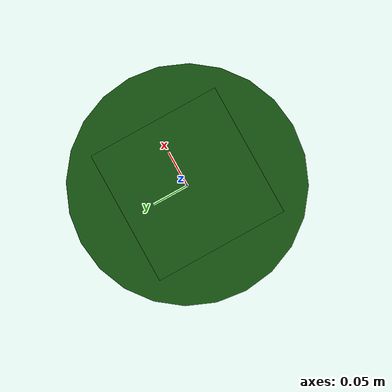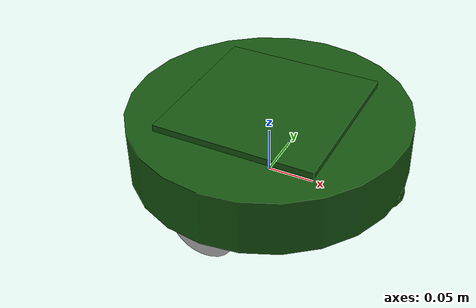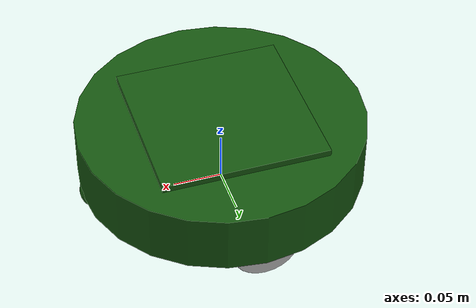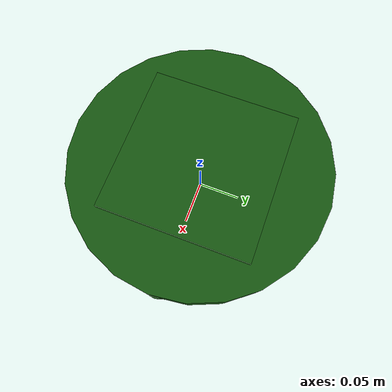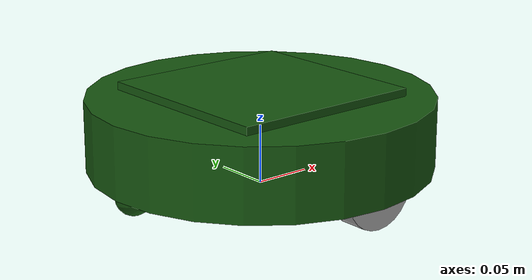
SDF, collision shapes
<?xml version="1.0" ?>
<sdf version="1.4">
  <model name="create">

    <link name="base">
      <inertial>
        <pose>0.001453 -0.000453 0.029787 0 0 0</pose>
        <inertia>
          <ixx>0.058640</ixx>
          <ixy>0.000124</ixy>
          <ixz>0.000615</ixz>
          <iyy>0.058786</iyy>
          <iyz>0.000014</iyz>
          <izz>1.532440</izz>
        </inertia>
        <mass>2.234000</mass>
      </inertial>

      <collision name="base_collision">
        <pose>0 0 0.047800 0 0 0</pose>
        <geometry>
          <cylinder>
            <radius>0.146495</radius>
            <length>0.061163</length>
          </cylinder>
        </geometry>
      </collision>
      <visual name="base_visual">
        <pose>0 0 0.047800 0 0 0</pose>
        <geometry>
          <mesh>
            <uri>model://create/meshes/create_body.dae</uri>
          </mesh>
        </geometry>
      </visual>

     <collision name="top plate">
	<pose>0 0 0.0778 0 0 0</pose>
	 <geometry>
	  <box>
	    <size> 0.17 0.17 0.015 </size>
	  </box>
        </geometry>
     </collision>
     <visual name="top_plate_visual">
	<pose>0 0 0.0778 0 0 0</pose>
	<geometry>
	  <box>
	    <size> 0.17 0.17 0.015 </size>
	  </box>
	</geometry>
	<material>
	 <lighting> true </lighting>
	 <diffuse> 0.0862745098 0.33725490196 0.06274509803 1 </diffuse>
	<ambient> 0.0862745098 0.33725490196 0.06274509803 1 </ambient>
        <emissive> 0.0862745098 0.33725490196 0.06274509803 1 </emissive>
	 <specular> 1 1 1 12.5 </specular>
	</material>
     </visual>

       <sensor name="top_ray" type="ray">
	<pose>0 0 0.087 0 -1.570700 0 </pose>
	<visualize>true</visualize>
	<update_rate>40</update_rate>
	<ray>
	  <scan>
	    <horizontal>
		<samples>10</samples>
		<min_angle>-1.570700</min_angle>
		<max_angle>1.570700</max_angle>
	    </horizontal>
	   </scan>
	   <range>
		<min>0.0</min>
		<max>0.5</max>
		<resolution>0.01</resolution>
	   </range>
	</ray>
	<plugin name="top_ray_controller" filename="libgazebo_ros_laser.so">
	  <alwaysOn>true</alwaysOn>
	  <updateRate>30.0</updateRate>
	  <topicName>laser/top/scan</topicName>
	  <frameName>base</frameName>
	</plugin>
      </sensor>

      <collision name="front_wheel_collision">
        <pose>0.130000 0 0.017000 0 1.570700 1.570700</pose>
        <geometry>
          <sphere>
            <radius>0.018000</radius>
          </sphere>
        </geometry>
        <surface>
          <friction>
            <ode>
              <mu>0</mu>
              <mu2>0</mu2>
              <fdir1>0 0 0</fdir1>
              <slip1>0</slip1>
              <slip2>0</slip2>
            </ode>
          </friction>
        </surface>
      </collision>
      <visual name="front_wheel_visual">
        <pose>0.130000 0 0.017000 0 1.570700 1.570700</pose>
        <geometry>
          <sphere>
            <radius>0.009000</radius>
          </sphere>
        </geometry>
      </visual>

      <collision name="rear_wheel_collision">
        <pose>-0.13 0 0.017 0 1.5707 1.5707</pose>
        <geometry>
          <sphere>
            <radius>0.015000</radius>
          </sphere>
        </geometry>
        <surface>
          <friction>
            <ode>
              <mu>0</mu>
              <mu2>0</mu2>
              <fdir1>0 0 0</fdir1>
              <slip1>0</slip1>
              <slip2>0</slip2>
            </ode>
          </friction>
        </surface>
      </collision>
      <visual name="rear_wheel_visual">
        <pose>-0.130000 0 0.017000 0 1.570700 1.570700</pose>
        <geometry>
          <sphere>
            <radius>0.007500</radius>
          </sphere>
        </geometry>
      </visual>

      <sensor name="left_cliff_sensor" type="ray">
        <pose>0.070000 0.140000 0.027000 0 1.570790 0</pose>
        <ray>
          <scan>
            <horizontal>
              <samples>1</samples>
              <resolution>1.000000</resolution>
              <min_angle>0</min_angle>
              <max_angle>0</max_angle>
            </horizontal>
          </scan>
          <range>
            <min>0.010000</min>
            <max>0.040000</max>
            <resolution>0.100000</resolution>
          </range>
        </ray>
      </sensor>

      <sensor name="right_cliff_sensor" type="ray">
        <pose>0.070000 -0.140000 0.027000 0 1.570790 0</pose>
        <ray>
          <scan>
            <horizontal>
              <samples>30</samples>
              <resolution>1.000000</resolution>
              <min_angle>0</min_angle>
              <max_angle>0</max_angle>
            </horizontal>
          </scan>
          <range>
            <min>0.010000</min>
            <max>0.040000</max>
            <resolution>0.100000</resolution>
          </range>
        </ray>
      </sensor>

      <sensor name="front_cliff_sensor" type="ray">
        <pose>0.200000 0.00000 0.027000 0 0 0</pose>
	<visualize>true</visualize>
	<update_rate>40</update_rate>
        <ray>
          <scan>
            <horizontal>
              <samples>10</samples>
              <resolution>1.000000</resolution>
              <min_angle>-2.26889</min_angle>
              <max_angle>2.26889</max_angle>
            </horizontal>
          </scan>
          <range>
            <min>0.00000</min>
            <max>0.50000</max>
            <resolution>0.100000</resolution>
          </range>
        </ray>
	<plugin name="front_ray_controller" filename="libgazebo_ros_laser.so">
	  <alwaysOn>true</alwaysOn>
	  <updateRate>30.0</updateRate>
	  <topicName>laser/front/scan</topicName>
	  <frameName>base</frameName>
	</plugin>
      </sensor>

	<sensor name="leftfront_cliff_sensor" type="ray">
        <pose>0.1270000 0.137000 0.027000 0 0 1.0</pose>
	<visualize>false</visualize>
	<update_rate>40</update_rate>
        <ray>
          <scan>
            <horizontal>
              <samples>10</samples>
              <resolution>1.000000</resolution>
              <min_angle>-2.26889</min_angle>
              <max_angle>1.8</max_angle>
            </horizontal>
          </scan>
          <range>
            <min>0.00000</min>
            <max>0.50000</max>
            <resolution>0.100000</resolution>
          </range>
        </ray>
	<plugin name="left_ray_controller" filename="libgazebo_ros_laser.so">
	  <alwaysOn>true</alwaysOn>
	  <updateRate>30.0</updateRate>
	  <topicName>laser/left/scan</topicName>
	  <frameName>base</frameName>
	</plugin>
      </sensor>

	<sensor name="rightfront_cliff_sensor" type="ray">
        <pose>0.127000 -0.13700 0.027000 0 0 -1.0</pose>
	<visualize>false</visualize>
	<update_rate>40</update_rate>
        <ray>
          <scan>
            <horizontal>
              <samples>10</samples>
              <resolution>1.000000</resolution>
              <min_angle>-1.8</min_angle>
              <max_angle>2.26889</max_angle>
            </horizontal>
          </scan>
          <range>
            <min>0.00000</min>
            <max>0.50000</max>
            <resolution>0.100000</resolution>
          </range>
        </ray>
	<plugin name="right_ray_controller" filename="libgazebo_ros_laser.so">
	  <alwaysOn>true</alwaysOn>
	  <updateRate>30.0</updateRate>
	  <topicName>laser/right/scan</topicName>
	  <frameName>base</frameName>
	</plugin>
      </sensor>

      <sensor name="wall_sensor" type="ray">
        <pose>0.090000 -0.120000 0.059000 0 0 -1.000000</pose>
        <ray>
          <scan>
            <horizontal>
              <samples>1</samples>
              <resolution>1.000000</resolution>
              <min_angle>0</min_angle>
              <max_angle>0</max_angle>
            </horizontal>
          </scan>
          <range>
            <min>0.016000</min>
            <max>0.040000</max>
            <resolution>0.100000</resolution>
          </range>
        </ray>
      </sensor>

      <sensor name="base_contact" type="contact">
        <contact>
          <collision>base_collision</collision>
        </contact>
      </sensor>
    </link>

    <link name="left_wheel">
      <pose>0 0.130000 0.032000 0 0 0</pose>
      <inertial>
        <inertia>
          <ixx>0.001000</ixx>
          <ixy>0</ixy>
          <ixz>0</ixz>
          <iyy>0.001000</iyy>
          <iyz>0</iyz>
          <izz>0.001000</izz>
        </inertia>
        <mass>0.010000</mass>
      </inertial>
      <collision name="collision">
        <pose>0 0 0 0 1.570700 1.570700</pose>
        <geometry>
          <cylinder>
            <radius>0.033000</radius>
            <length>0.023000</length>
          </cylinder>
        </geometry>
        <surface>
          <friction>
            <ode>
              <mu>10</mu>
              <mu2>10</mu2>
              <fdir1>0 0 0</fdir1>
              <slip1>0</slip1>
              <slip2>0</slip2>
            </ode>
          </friction>
        </surface>
      </collision>
      <visual name="visual">
        <pose>0 0 0 0 1.570700 1.570700</pose>
        <geometry>
          <cylinder>
            <radius>0.033000</radius>
            <length>0.023000</length>
          </cylinder>
        </geometry>
      </visual>
    </link>

    <link name="right_wheel">
      <pose>0 -0.130000 0.032000 0 0 0</pose>
      <inertial>
        <inertia>
          <ixx>0.001000</ixx>
          <ixy>0</ixy>
          <ixz>0</ixz>
          <iyy>0.001000</iyy>
          <iyz>0</iyz>
          <izz>0.001000</izz>
        </inertia>
        <mass>0.010000</mass>
      </inertial>
      <collision name="collision">
        <pose>0 0 0 0 1.570700 1.570700</pose>
        <geometry>
          <cylinder>
            <radius>0.033000</radius>
            <length>0.023000</length>
          </cylinder>
        </geometry>
        <surface>
          <friction>
            <ode>
              <mu>10</mu>
              <mu2>10</mu2>
              <fdir1>0 0 0</fdir1>
              <slip1>0</slip1>
              <slip2>0</slip2>
            </ode>
          </friction>
        </surface>
      </collision>
      <visual name="visual">
        <pose>0 0 0 0 1.570700 1.570700</pose>
        <geometry>
          <cylinder>
            <radius>0.033000</radius>
            <length>0.023000</length>
          </cylinder>
        </geometry>
      </visual>
    </link>

    <joint name="left_wheel" type="revolute">
      <parent>base</parent>
      <child>left_wheel</child>
      <axis>
        <xyz>0 1 0</xyz>
      </axis>
    </joint>

    <joint name="right_wheel" type="revolute">
      <parent>base</parent>
      <child>right_wheel</child>
      <axis>
        <xyz>0 1 0</xyz>
      </axis>
    </joint>
  <plugin name="differential_drive_controller" filename="libgazebo_ros_diff_drive.so">
    <alwaysOn>true</alwaysOn>
    <updateRate>20</updateRate>
    <leftJoint>right_wheel</leftJoint>
    <rightJoint>left_wheel</rightJoint>
    <wheelSeparation>0.26</wheelSeparation>
    <wheelDiameter>0.066</wheelDiameter>
    <torque>20</torque>
    <commandTopic>roomba/cmd_vel</commandTopic>
    <odometryTopic>roomba/odom</odometryTopic>
    <odometryFrame>roomba_odom</odometryFrame>
    <robotBaseFrame>roomba</robotBaseFrame>
    <publishWheelTF>false</publishWheelTF>
  </plugin>
  </model>
</sdf>
